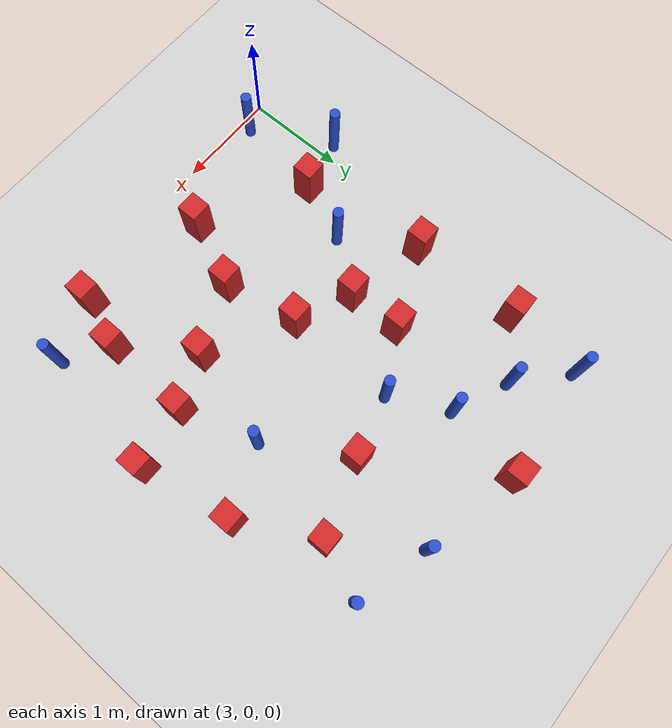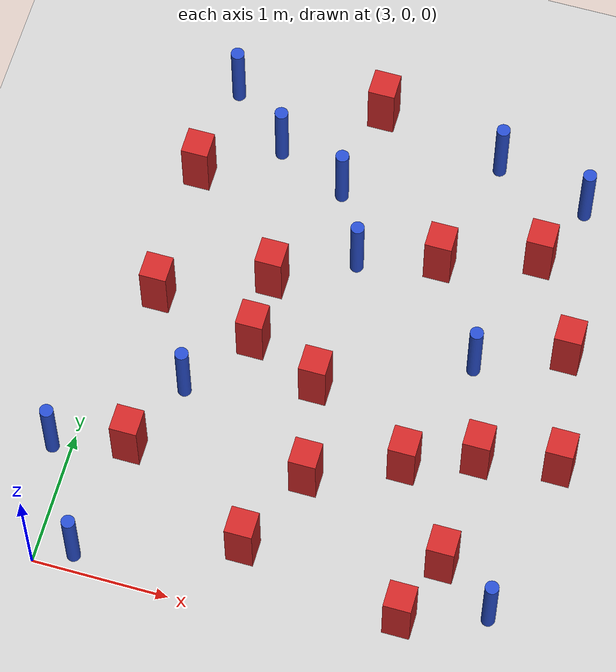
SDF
<sdf version="1.6">
 <world name="default">
  <model name="ground_plane">
   <static>1</static>
   <link name="link">
    <collision name="collision">
     <geometry><plane><normal>0 0 1</normal><size>100 100</size></plane></geometry>
     <surface><friction><ode><mu>100</mu><mu2>50</mu2></ode></friction></surface>
    </collision>
    <visual name="visual">
     <cast_shadows>0</cast_shadows>
     <geometry><plane><normal>0 0 1</normal><size>100 100</size></plane></geometry>
     <material>
      <ambient>1.0 1.0 1.0 1.0</ambient>
      <diffuse>0.8 0.8 0.8 1.0</diffuse>
      <specular>0.01 0.01 0.01 1.000000</specular>
     </material>
    </visual>
   </link>
  </model>
  <model name="square_post_obstacle4">
   <static>true</static>
   <pose>4.68333809107 1.11460655222 -6.11067671241e-07 -5.50515727128e-06 -8.79689657224e-07 2.37013304536e-05</pose>
   <link name="link">
    <pose>0 0 0.25 0 -0 0</pose>
    <inertial>
     <mass>100</mass>
     <inertia>
      <ixx>0.166667</ixx>
      <ixy>0</ixy>
      <ixz>0</ixz>
      <iyy>0.166667</iyy>
      <iyz>0</iyz>
      <izz>0.166667</izz>
     </inertia>
    </inertial>
    <collision name="collision"><geometry><box><size>.2 .2 .5</size></box></geometry></collision>
    <visual name="visual">
     <geometry><box><size>.2 .2 .5</size></box></geometry>
     <material>
      <script><name>Gazebo/Red</name><uri>file://media/materials/scripts/gazebo.material</uri></script>
     </material>
    </visual>
   </link>
  </model>
  <model name="square_post_obstacle10">
   <static>true</static>
   <pose>5.81792439504 1.58387289874 -6.11067671241e-07 -5.50515727128e-06 -8.79689657224e-07 2.37013304536e-05</pose>
   <link name="link">
    <pose>0 0 0.25 0 -0 0</pose>
    <inertial>
     <mass>100</mass>
     <inertia>
      <ixx>0.166667</ixx>
      <ixy>0</ixy>
      <ixz>0</ixz>
      <iyy>0.166667</iyy>
      <iyz>0</iyz>
      <izz>0.166667</izz>
     </inertia>
    </inertial>
    <collision name="collision"><geometry><box><size>.2 .2 .5</size></box></geometry></collision>
    <visual name="visual">
     <geometry><box><size>.2 .2 .5</size></box></geometry>
     <material>
      <script><name>Gazebo/Red</name><uri>file://media/materials/scripts/gazebo.material</uri></script>
     </material>
    </visual>
   </link>
  </model>
  <model name="square_post_obstacle16">
   <static>true</static>
   <pose>5.15076023287 3.03704496694 -6.11067671241e-07 -5.50515727128e-06 -8.79689657224e-07 2.37013304536e-05</pose>
   <link name="link">
    <pose>0 0 0.25 0 -0 0</pose>
    <inertial>
     <mass>100</mass>
     <inertia>
      <ixx>0.166667</ixx>
      <ixy>0</ixy>
      <ixz>0</ixz>
      <iyy>0.166667</iyy>
      <iyz>0</iyz>
      <izz>0.166667</izz>
     </inertia>
    </inertial>
    <collision name="collision"><geometry><box><size>.2 .2 .5</size></box></geometry></collision>
    <visual name="visual">
     <geometry><box><size>.2 .2 .5</size></box></geometry>
     <material>
      <script><name>Gazebo/Red</name><uri>file://media/materials/scripts/gazebo.material</uri></script>
     </material>
    </visual>
   </link>
  </model>
  <model name="pole_obstacle17">
   <static>true</static>
   <pose>3.76511676319 3.65166009717 -9.47619616065e-06 5.49618799737e-07 2.36310414051e-07 -1.55090534807e-07</pose>
   <link name="link">
    <pose>0 0 0.3 0 -0 0</pose>
    <inertial>
     <mass>1</mass>
     <inertia><ixx>0.145833</ixx><ixy>0</ixy><ixz>0</ixz><iyy>0.145833</iyy><iyz>0</iyz><izz>0.125</izz></inertia>
    </inertial>
    <collision name="collision">
     <geometry><cylinder><radius>0.05</radius><length>.6</length></cylinder></geometry>
    </collision>
    <visual name="visual">
     <geometry><cylinder><radius>0.05</radius><length>.6</length></cylinder></geometry>
     <material>
      <script><name>Gazebo/Blue</name><uri>file://media/materials/scripts/gazebo.material</uri></script>
     </material>
    </visual>
   </link>
  </model>
  <model name="square_post_obstacle33">
   <static>true</static>
   <pose>4.01620911778 2.05410688389 -6.11067671241e-07 -5.50515727128e-06 -8.79689657224e-07 2.37013304536e-05</pose>
   <link name="link">
    <pose>0 0 0.25 0 -0 0</pose>
    <inertial>
     <mass>100</mass>
     <inertia>
      <ixx>0.166667</ixx>
      <ixy>0</ixy>
      <ixz>0</ixz>
      <iyy>0.166667</iyy>
      <iyz>0</iyz>
      <izz>0.166667</izz>
     </inertia>
    </inertial>
    <collision name="collision"><geometry><box><size>.2 .2 .5</size></box></geometry></collision>
    <visual name="visual">
     <geometry><box><size>.2 .2 .5</size></box></geometry>
     <material>
      <script><name>Gazebo/Red</name><uri>file://media/materials/scripts/gazebo.material</uri></script>
     </material>
    </visual>
   </link>
  </model>
  <model name="square_post_obstacle36">
   <static>true</static>
   <pose>5.32715967315 1.39543265128 -6.11067671241e-07 -5.50515727128e-06 -8.79689657224e-07 2.37013304536e-05</pose>
   <link name="link">
    <pose>0 0 0.25 0 -0 0</pose>
    <inertial>
     <mass>100</mass>
     <inertia>
      <ixx>0.166667</ixx>
      <ixy>0</ixy>
      <ixz>0</ixz>
      <iyy>0.166667</iyy>
      <iyz>0</iyz>
      <izz>0.166667</izz>
     </inertia>
    </inertial>
    <collision name="collision"><geometry><box><size>.2 .2 .5</size></box></geometry></collision>
    <visual name="visual">
     <geometry><box><size>.2 .2 .5</size></box></geometry>
     <material>
      <script><name>Gazebo/Red</name><uri>file://media/materials/scripts/gazebo.material</uri></script>
     </material>
    </visual>
   </link>
  </model>
  <model name="pole_obstacle38">
   <static>true</static>
   <pose>2.86282230927 0.881759491907 -9.47619616065e-06 5.49618799738e-07 2.36310414075e-07 -1.55090534793e-07</pose>
   <link name="link">
    <pose>0 0 0.3 0 -0 0</pose>
    <inertial>
     <mass>1</mass>
     <inertia><ixx>0.145833</ixx><ixy>0</ixy><ixz>0</ixz><iyy>0.145833</iyy><iyz>0</iyz><izz>0.125</izz></inertia>
    </inertial>
    <collision name="collision">
     <geometry><cylinder><radius>0.05</radius><length>.6</length></cylinder></geometry>
    </collision>
    <visual name="visual">
     <geometry><cylinder><radius>0.05</radius><length>.6</length></cylinder></geometry>
     <material>
      <script><name>Gazebo/Blue</name><uri>file://media/materials/scripts/gazebo.material</uri></script>
     </material>
    </visual>
   </link>
  </model>
  <model name="square_post_obstacle38">
   <static>true</static>
   <pose>3.22928506262 3.29800616518 -6.11067671241e-07 -5.50515727128e-06 -8.79689657224e-07 2.37013304536e-05</pose>
   <link name="link">
    <pose>0 0 0.25 0 -0 0</pose>
    <inertial>
     <mass>100</mass>
     <inertia>
      <ixx>0.166667</ixx>
      <ixy>0</ixy>
      <ixz>0</ixz>
      <iyy>0.166667</iyy>
      <iyz>0</iyz>
      <izz>0.166667</izz>
     </inertia>
    </inertial>
    <collision name="collision"><geometry><box><size>.2 .2 .5</size></box></geometry></collision>
    <visual name="visual">
     <geometry><box><size>.2 .2 .5</size></box></geometry>
     <material>
      <script><name>Gazebo/Red</name><uri>file://media/materials/scripts/gazebo.material</uri></script>
     </material>
    </visual>
   </link>
  </model>
  <model name="square_post_obstacle46">
   <static>true</static>
   <pose>4.40503086688 0.486303597086 -6.11067671241e-07 -5.50515727128e-06 -8.79689657224e-07 2.37013304536e-05</pose>
   <link name="link">
    <pose>0 0 0.25 0 -0 0</pose>
    <inertial>
     <mass>100</mass>
     <inertia>
      <ixx>0.166667</ixx>
      <ixy>0</ixy>
      <ixz>0</ixz>
      <iyy>0.166667</iyy>
      <iyz>0</iyz>
      <izz>0.166667</izz>
     </inertia>
    </inertial>
    <collision name="collision"><geometry><box><size>.2 .2 .5</size></box></geometry></collision>
    <visual name="visual">
     <geometry><box><size>.2 .2 .5</size></box></geometry>
     <material>
      <script><name>Gazebo/Red</name><uri>file://media/materials/scripts/gazebo.material</uri></script>
     </material>
    </visual>
   </link>
  </model>
  <model name="square_post_obstacle56">
   <static>true</static>
   <pose>6.2344315187 2.55958211341 -6.11067671241e-07 -5.50515727128e-06 -8.79689657224e-07 2.37013304536e-05</pose>
   <link name="link">
    <pose>0 0 0.25 0 -0 0</pose>
    <inertial>
     <mass>100</mass>
     <inertia>
      <ixx>0.166667</ixx>
      <ixy>0</ixy>
      <ixz>0</ixz>
      <iyy>0.166667</iyy>
      <iyz>0</iyz>
      <izz>0.166667</izz>
     </inertia>
    </inertial>
    <collision name="collision"><geometry><box><size>.2 .2 .5</size></box></geometry></collision>
    <visual name="visual">
     <geometry><box><size>.2 .2 .5</size></box></geometry>
     <material>
      <script><name>Gazebo/Red</name><uri>file://media/materials/scripts/gazebo.material</uri></script>
     </material>
    </visual>
   </link>
  </model>
  <model name="square_post_obstacle71">
   <static>true</static>
   <pose>4.41394076876 4.15950543328 -6.11067671241e-07 -5.50515727128e-06 -8.79689657224e-07 2.37013304536e-05</pose>
   <link name="link">
    <pose>0 0 0.25 0 -0 0</pose>
    <inertial>
     <mass>100</mass>
     <inertia>
      <ixx>0.166667</ixx>
      <ixy>0</ixy>
      <ixz>0</ixz>
      <iyy>0.166667</iyy>
      <iyz>0</iyz>
      <izz>0.166667</izz>
     </inertia>
    </inertial>
    <collision name="collision"><geometry><box><size>.2 .2 .5</size></box></geometry></collision>
    <visual name="visual">
     <geometry><box><size>.2 .2 .5</size></box></geometry>
     <material>
      <script><name>Gazebo/Red</name><uri>file://media/materials/scripts/gazebo.material</uri></script>
     </material>
    </visual>
   </link>
  </model>
  <model name="square_post_obstacle72">
   <static>true</static>
   <pose>4.54979881974 1.82802787597 -6.11067671241e-07 -5.50515727128e-06 -8.79689657224e-07 2.37013304536e-05</pose>
   <link name="link">
    <pose>0 0 0.25 0 -0 0</pose>
    <inertial>
     <mass>100</mass>
     <inertia>
      <ixx>0.166667</ixx>
      <ixy>0</ixy>
      <ixz>0</ixz>
      <iyy>0.166667</iyy>
      <iyz>0</iyz>
      <izz>0.166667</izz>
     </inertia>
    </inertial>
    <collision name="collision"><geometry><box><size>.2 .2 .5</size></box></geometry></collision>
    <visual name="visual">
     <geometry><box><size>.2 .2 .5</size></box></geometry>
     <material>
      <script><name>Gazebo/Red</name><uri>file://media/materials/scripts/gazebo.material</uri></script>
     </material>
    </visual>
   </link>
  </model>
  <model name="pole_obstacle76">
   <static>true</static>
   <pose>5.60401964578 2.29964641994 -9.47619616065e-06 5.49618799738e-07 2.36310414051e-07 -1.55090534805e-07</pose>
   <link name="link">
    <pose>0 0 0.3 0 -0 0</pose>
    <inertial>
     <mass>1</mass>
     <inertia><ixx>0.145833</ixx><ixy>0</ixy><ixz>0</ixz><iyy>0.145833</iyy><iyz>0</iyz><izz>0.125</izz></inertia>
    </inertial>
    <collision name="collision">
     <geometry><cylinder><radius>0.05</radius><length>.6</length></cylinder></geometry>
    </collision>
    <visual name="visual">
     <geometry><cylinder><radius>0.05</radius><length>.6</length></cylinder></geometry>
     <material>
      <script><name>Gazebo/Blue</name><uri>file://media/materials/scripts/gazebo.material</uri></script>
     </material>
    </visual>
   </link>
  </model>
  <model name="pole_obstacle93">
   <static>true</static>
   <pose>3.26941782002 0.120895018381 -9.47619616065e-06 5.49618799737e-07 2.36310414066e-07 -1.55090534798e-07</pose>
   <link name="link">
    <pose>0 0 0.3 0 -0 0</pose>
    <inertial>
     <mass>1</mass>
     <inertia><ixx>0.145833</ixx><ixy>0</ixy><ixz>0</ixz><iyy>0.145833</iyy><iyz>0</iyz><izz>0.125</izz></inertia>
    </inertial>
    <collision name="collision">
     <geometry><cylinder><radius>0.05</radius><length>.6</length></cylinder></geometry>
    </collision>
    <visual name="visual">
     <geometry><cylinder><radius>0.05</radius><length>.6</length></cylinder></geometry>
     <material>
      <script><name>Gazebo/Blue</name><uri>file://media/materials/scripts/gazebo.material</uri></script>
     </material>
    </visual>
   </link>
  </model>
  <model name="square_post_obstacle85">
   <static>true</static>
   <pose>3.24167538499 2.23248687007 -6.11067671241e-07 -5.50515727128e-06 -8.79689657224e-07 2.37013304536e-05</pose>
   <link name="link">
    <pose>0 0 0.25 0 -0 0</pose>
    <inertial>
     <mass>100</mass>
     <inertia>
      <ixx>0.166667</ixx>
      <ixy>0</ixy>
      <ixz>0</ixz>
      <iyy>0.166667</iyy>
      <iyz>0</iyz>
      <izz>0.166667</izz>
     </inertia>
    </inertial>
    <collision name="collision"><geometry><box><size>.2 .2 .5</size></box></geometry></collision>
    <visual name="visual">
     <geometry><box><size>.2 .2 .5</size></box></geometry>
     <material>
      <script><name>Gazebo/Red</name><uri>file://media/materials/scripts/gazebo.material</uri></script>
     </material>
    </visual>
   </link>
  </model>
  <model name="pole_obstacle118">
   <static>true</static>
   <pose>4.56173694156 2.88470015818 -9.47619616065e-06 5.49618799738e-07 2.36310414051e-07 -1.55090534805e-07</pose>
   <link name="link">
    <pose>0 0 0.3 0 -0 0</pose>
    <inertial>
     <mass>1</mass>
     <inertia><ixx>0.145833</ixx><ixy>0</ixy><ixz>0</ixz><iyy>0.145833</iyy><iyz>0</iyz><izz>0.125</izz></inertia>
    </inertial>
    <collision name="collision">
     <geometry><cylinder><radius>0.05</radius><length>.6</length></cylinder></geometry>
    </collision>
    <visual name="visual">
     <geometry><cylinder><radius>0.05</radius><length>.6</length></cylinder></geometry>
     <material>
      <script><name>Gazebo/Blue</name><uri>file://media/materials/scripts/gazebo.material</uri></script>
     </material>
    </visual>
   </link>
  </model>
  <model name="pole_obstacle133">
   <static>true</static>
   <pose>3.64027596968 1.56775584052 -9.47619616065e-06 5.49618799737e-07 2.36310414072e-07 -1.55090534793e-07</pose>
   <link name="link">
    <pose>0 0 0.3 0 -0 0</pose>
    <inertial>
     <mass>1</mass>
     <inertia><ixx>0.145833</ixx><ixy>0</ixy><ixz>0</ixz><iyy>0.145833</iyy><iyz>0</iyz><izz>0.125</izz></inertia>
    </inertial>
    <collision name="collision">
     <geometry><cylinder><radius>0.05</radius><length>.6</length></cylinder></geometry>
    </collision>
    <visual name="visual">
     <geometry><cylinder><radius>0.05</radius><length>.6</length></cylinder></geometry>
     <material>
      <script><name>Gazebo/Blue</name><uri>file://media/materials/scripts/gazebo.material</uri></script>
     </material>
    </visual>
   </link>
  </model>
  <model name="pole_obstacle136">
   <static>true</static>
   <pose>5.36938665774 3.96076599892 -9.47619616065e-06 5.49618799737e-07 2.36310414054e-07 -1.55090534804e-07</pose>
   <link name="link">
    <pose>0 0 0.3 0 -0 0</pose>
    <inertial>
     <mass>1</mass>
     <inertia><ixx>0.145833</ixx><ixy>0</ixy><ixz>0</ixz><iyy>0.145833</iyy><iyz>0</iyz><izz>0.125</izz></inertia>
    </inertial>
    <collision name="collision">
     <geometry><cylinder><radius>0.05</radius><length>.6</length></cylinder></geometry>
    </collision>
    <visual name="visual">
     <geometry><cylinder><radius>0.05</radius><length>.6</length></cylinder></geometry>
     <material>
      <script><name>Gazebo/Blue</name><uri>file://media/materials/scripts/gazebo.material</uri></script>
     </material>
    </visual>
   </link>
  </model>
  <model name="square_post_obstacle119">
   <static>true</static>
   <pose>5.60643136561 0.258793017003 -6.11067671241e-07 -5.50515727128e-06 -8.79689657224e-07 2.37013304536e-05</pose>
   <link name="link">
    <pose>0 0 0.25 0 -0 0</pose>
    <inertial>
     <mass>100</mass>
     <inertia>
      <ixx>0.166667</ixx>
      <ixy>0</ixy>
      <ixz>0</ixz>
      <iyy>0.166667</iyy>
      <iyz>0</iyz>
      <izz>0.166667</izz>
     </inertia>
    </inertial>
    <collision name="collision"><geometry><box><size>.2 .2 .5</size></box></geometry></collision>
    <visual name="visual">
     <geometry><box><size>.2 .2 .5</size></box></geometry>
     <material>
      <script><name>Gazebo/Red</name><uri>file://media/materials/scripts/gazebo.material</uri></script>
     </material>
    </visual>
   </link>
  </model>
  <model name="square_post_obstacle124">
   <static>true</static>
   <pose>6.39183244544 1.68362561915 -6.11067671241e-07 -5.50515727128e-06 -8.79689657224e-07 2.37013304536e-05</pose>
   <link name="link">
    <pose>0 0 0.25 0 -0 0</pose>
    <inertial>
     <mass>100</mass>
     <inertia>
      <ixx>0.166667</ixx>
      <ixy>0</ixy>
      <ixz>0</ixz>
      <iyy>0.166667</iyy>
      <iyz>0</iyz>
      <izz>0.166667</izz>
     </inertia>
    </inertial>
    <collision name="collision"><geometry><box><size>.2 .2 .5</size></box></geometry></collision>
    <visual name="visual">
     <geometry><box><size>.2 .2 .5</size></box></geometry>
     <material>
      <script><name>Gazebo/Red</name><uri>file://media/materials/scripts/gazebo.material</uri></script>
     </material>
    </visual>
   </link>
  </model>
  <model name="pole_obstacle146">
   <static>true</static>
   <pose>6.19688774363 0.453857563228 -9.47619616065e-06 5.49618799737e-07 2.3631041407e-07 -1.55090534796e-07</pose>
   <link name="link">
    <pose>0 0 0.3 0 -0 0</pose>
    <inertial>
     <mass>1</mass>
     <inertia><ixx>0.145833</ixx><ixy>0</ixy><ixz>0</ixz><iyy>0.145833</iyy><iyz>0</iyz><izz>0.125</izz></inertia>
    </inertial>
    <collision name="collision">
     <geometry><cylinder><radius>0.05</radius><length>.6</length></cylinder></geometry>
    </collision>
    <visual name="visual">
     <geometry><cylinder><radius>0.05</radius><length>.6</length></cylinder></geometry>
     <material>
      <script><name>Gazebo/Blue</name><uri>file://media/materials/scripts/gazebo.material</uri></script>
     </material>
    </visual>
   </link>
  </model>
  <model name="square_post_obstacle157">
   <static>true</static>
   <pose>4.00620310391 2.5717258599 -6.11067671241e-07 -5.50515727128e-06 -8.79689657224e-07 2.37013304536e-05</pose>
   <link name="link">
    <pose>0 0 0.25 0 -0 0</pose>
    <inertial>
     <mass>100</mass>
     <inertia>
      <ixx>0.166667</ixx>
      <ixy>0</ixy>
      <ixz>0</ixz>
      <iyy>0.166667</iyy>
      <iyz>0</iyz>
      <izz>0.166667</izz>
     </inertia>
    </inertial>
    <collision name="collision"><geometry><box><size>.2 .2 .5</size></box></geometry></collision>
    <visual name="visual">
     <geometry><box><size>.2 .2 .5</size></box></geometry>
     <material>
      <script><name>Gazebo/Red</name><uri>file://media/materials/scripts/gazebo.material</uri></script>
     </material>
    </visual>
   </link>
  </model>
  <model name="square_post_obstacle165">
   <static>true</static>
   <pose>3.40453741087 1.01307192407 -6.11067671241e-07 -5.50515727128e-06 -8.79689657224e-07 2.37013304536e-05</pose>
   <link name="link">
    <pose>0 0 0.25 0 -0 0</pose>
    <inertial>
     <mass>100</mass>
     <inertia>
      <ixx>0.166667</ixx>
      <ixy>0</ixy>
      <ixz>0</ixz>
      <iyy>0.166667</iyy>
      <iyz>0</iyz>
      <izz>0.166667</izz>
     </inertia>
    </inertial>
    <collision name="collision"><geometry><box><size>.2 .2 .5</size></box></geometry></collision>
    <visual name="visual">
     <geometry><box><size>.2 .2 .5</size></box></geometry>
     <material>
      <script><name>Gazebo/Red</name><uri>file://media/materials/scripts/gazebo.material</uri></script>
     </material>
    </visual>
   </link>
  </model>
  <model name="pole_obstacle185">
   <static>true</static>
   <pose>3.30954706999 4.05271271793 -9.47619616065e-06 5.49618799738e-07 2.3631041406e-07 -1.55090534801e-07</pose>
   <link name="link">
    <pose>0 0 0.3 0 -0 0</pose>
    <inertial>
     <mass>1</mass>
     <inertia><ixx>0.145833</ixx><ixy>0</ixy><ixz>0</ixz><iyy>0.145833</iyy><iyz>0</iyz><izz>0.125</izz></inertia>
    </inertial>
    <collision name="collision">
     <geometry><cylinder><radius>0.05</radius><length>.6</length></cylinder></geometry>
    </collision>
    <visual name="visual">
     <geometry><cylinder><radius>0.05</radius><length>.6</length></cylinder></geometry>
     <material>
      <script><name>Gazebo/Blue</name><uri>file://media/materials/scripts/gazebo.material</uri></script>
     </material>
    </visual>
   </link>
  </model>
  <model name="square_post_obstacle173">
   <static>true</static>
   <pose>5.85066722193 3.26485960037 -6.11067671241e-07 -5.50515727128e-06 -8.79689657224e-07 2.37013304536e-05</pose>
   <link name="link">
    <pose>0 0 0.25 0 -0 0</pose>
    <inertial>
     <mass>100</mass>
     <inertia>
      <ixx>0.166667</ixx>
      <ixy>0</ixy>
      <ixz>0</ixz>
      <iyy>0.166667</iyy>
      <iyz>0</iyz>
      <izz>0.166667</izz>
     </inertia>
    </inertial>
    <collision name="collision"><geometry><box><size>.2 .2 .5</size></box></geometry></collision>
    <visual name="visual">
     <geometry><box><size>.2 .2 .5</size></box></geometry>
     <material>
      <script><name>Gazebo/Red</name><uri>file://media/materials/scripts/gazebo.material</uri></script>
     </material>
    </visual>
   </link>
  </model>
  <model name="pole_obstacle194">
   <static>true</static>
   <pose>6.06881353897 3.76559378281 -9.47619616065e-06 5.49618799738e-07 2.36310414051e-07 -1.55090534805e-07</pose>
   <link name="link">
    <pose>0 0 0.3 0 -0 0</pose>
    <inertial>
     <mass>1</mass>
     <inertia><ixx>0.145833</ixx><ixy>0</ixy><ixz>0</ixz><iyy>0.145833</iyy><iyz>0</iyz><izz>0.125</izz></inertia>
    </inertial>
    <collision name="collision">
     <geometry><cylinder><radius>0.05</radius><length>.6</length></cylinder></geometry>
    </collision>
    <visual name="visual">
     <geometry><cylinder><radius>0.05</radius><length>.6</length></cylinder></geometry>
     <material>
      <script><name>Gazebo/Blue</name><uri>file://media/materials/scripts/gazebo.material</uri></script>
     </material>
    </visual>
   </link>
  </model>
  <model name="pole_obstacle226">
   <static>true</static>
   <pose>4.29424918512 3.42652694371 -9.47619616065e-06 5.49618799738e-07 2.36310414051e-07 -1.55090534805e-07</pose>
   <link name="link">
    <pose>0 0 0.3 0 -0 0</pose>
    <inertial>
     <mass>1</mass>
     <inertia><ixx>0.145833</ixx><ixy>0</ixy><ixz>0</ixz><iyy>0.145833</iyy><iyz>0</iyz><izz>0.125</izz></inertia>
    </inertial>
    <collision name="collision">
     <geometry><cylinder><radius>0.05</radius><length>.6</length></cylinder></geometry>
    </collision>
    <visual name="visual">
     <geometry><cylinder><radius>0.05</radius><length>.6</length></cylinder></geometry>
     <material>
      <script><name>Gazebo/Blue</name><uri>file://media/materials/scripts/gazebo.material</uri></script>
     </material>
    </visual>
   </link>
  </model>
  <model name="square_post_obstacle203">
   <static>true</static>
   <pose>5.7825999502 0.740808976878 -6.11067671241e-07 -5.50515727128e-06 -8.79689657224e-07 2.37013304536e-05</pose>
   <link name="link">
    <pose>0 0 0.25 0 -0 0</pose>
    <inertial>
     <mass>100</mass>
     <inertia>
      <ixx>0.166667</ixx>
      <ixy>0</ixy>
      <ixz>0</ixz>
      <iyy>0.166667</iyy>
      <iyz>0</iyz>
      <izz>0.166667</izz>
     </inertia>
    </inertial>
    <collision name="collision"><geometry><box><size>.2 .2 .5</size></box></geometry></collision>
    <visual name="visual">
     <geometry><box><size>.2 .2 .5</size></box></geometry>
     <material>
      <script><name>Gazebo/Red</name><uri>file://media/materials/scripts/gazebo.material</uri></script>
     </material>
    </visual>
   </link>
  </model>
 </world>
</sdf>
